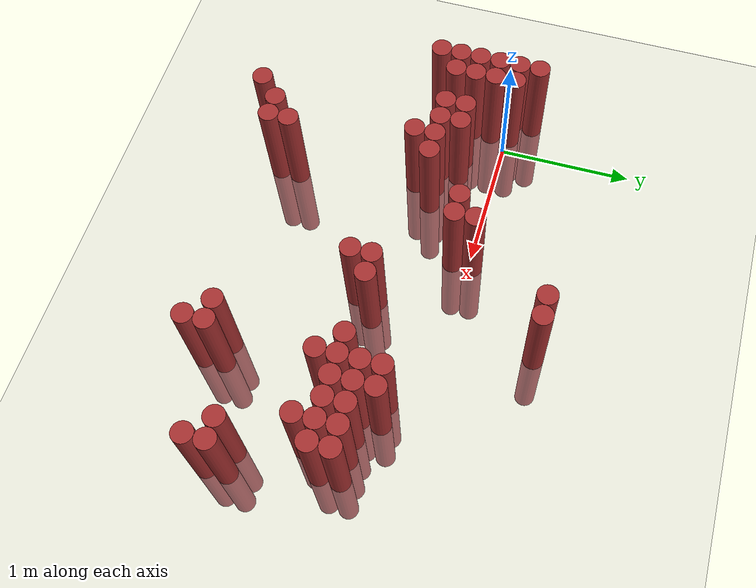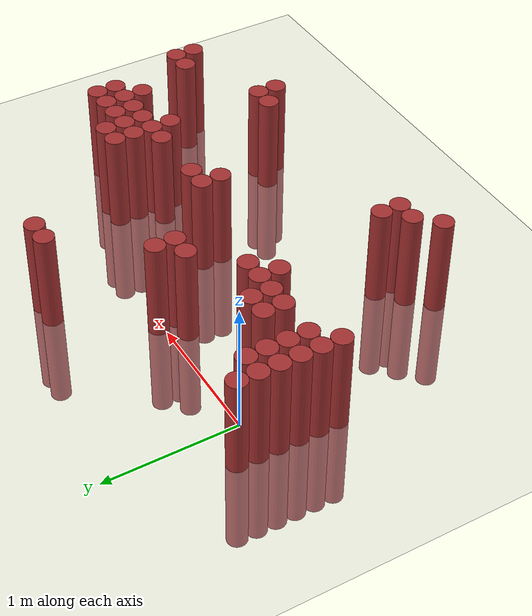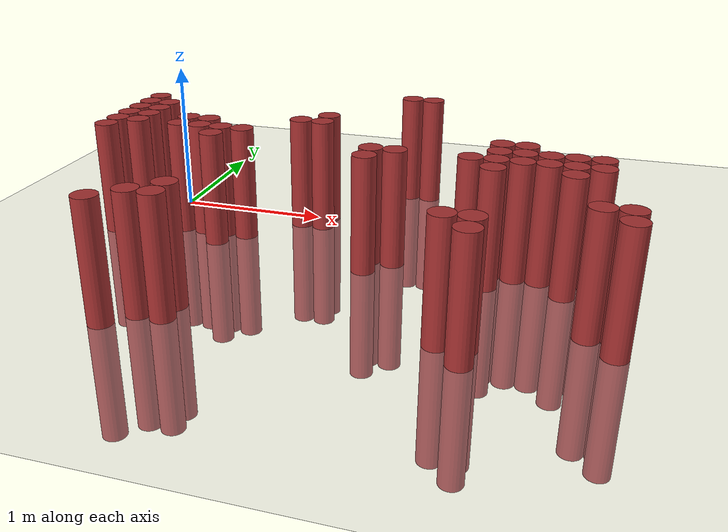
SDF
<sdf version="1.6">
 <world name="default">
  <model name="ground_plane">
   <static>1</static>
   <link name="link">
    <collision name="collision">
     <geometry><plane><normal>0 0 1</normal><size>100 100</size></plane></geometry>
     <surface><friction><ode><mu>100</mu><mu2>50</mu2></ode></friction></surface>
    </collision>
    <visual name="visual">
     <cast_shadows>0</cast_shadows>
     <geometry><plane><normal>0 0 1</normal><size>100 100</size></plane></geometry>
     <material>
      <script><uri>file://media/materials/scripts/gazebo.material</uri><name>Gazebo/Grey</name></script>
     </material>
    </visual>
   </link>
  </model>
  <model name="unit_cylinder_307">
   <static>1</static>
   <pose>-0.275000 -0.575000 0.000000 0.000000 0.000000 0.000000</pose>
   <link name="link">
    <inertial>
     <mass>1</mass>
     <inertia><ixx>0.145833</ixx><ixy>0</ixy><ixz>0</ixz><iyy>0.145833</iyy><iyz>0</iyz><izz>0.125</izz></inertia>
    </inertial>
    <collision name="collision">
     <geometry><cylinder><radius>0.075000</radius><length>1.5</length></cylinder></geometry>
    </collision>
    <visual name="visual">
     <geometry><cylinder><radius>0.075000</radius><length>1.5</length></cylinder></geometry>
     <material>
      <ambient>0.648000 0.192000 0.192000 1</ambient>
      <diffuse>0.648000 0.192000 0.192000 1</diffuse>
     </material>
     <material>
      <script><name>Gazebo/Grey</name><uri>file://media/materials/scripts/gazebo.material</uri></script>
     </material>
    </visual>
   </link>
  </model>
  <model name="unit_cylinder_308">
   <static>1</static>
   <pose>-0.275000 -0.425000 0.000000 0.000000 0.000000 0.000000</pose>
   <link name="link">
    <inertial>
     <mass>1</mass>
     <inertia><ixx>0.145833</ixx><ixy>0</ixy><ixz>0</ixz><iyy>0.145833</iyy><iyz>0</iyz><izz>0.125</izz></inertia>
    </inertial>
    <collision name="collision">
     <geometry><cylinder><radius>0.075000</radius><length>1.5</length></cylinder></geometry>
    </collision>
    <visual name="visual">
     <geometry><cylinder><radius>0.075000</radius><length>1.5</length></cylinder></geometry>
     <material>
      <ambient>0.648000 0.192000 0.192000 1</ambient>
      <diffuse>0.648000 0.192000 0.192000 1</diffuse>
     </material>
     <material>
      <script><name>Gazebo/Grey</name><uri>file://media/materials/scripts/gazebo.material</uri></script>
     </material>
    </visual>
   </link>
  </model>
  <model name="unit_cylinder_309">
   <static>1</static>
   <pose>-0.275000 -0.275000 0.000000 0.000000 0.000000 0.000000</pose>
   <link name="link">
    <inertial>
     <mass>1</mass>
     <inertia><ixx>0.145833</ixx><ixy>0</ixy><ixz>0</ixz><iyy>0.145833</iyy><iyz>0</iyz><izz>0.125</izz></inertia>
    </inertial>
    <collision name="collision">
     <geometry><cylinder><radius>0.075000</radius><length>1.5</length></cylinder></geometry>
    </collision>
    <visual name="visual">
     <geometry><cylinder><radius>0.075000</radius><length>1.5</length></cylinder></geometry>
     <material>
      <ambient>0.648000 0.192000 0.192000 1</ambient>
      <diffuse>0.648000 0.192000 0.192000 1</diffuse>
     </material>
     <material>
      <script><name>Gazebo/Grey</name><uri>file://media/materials/scripts/gazebo.material</uri></script>
     </material>
    </visual>
   </link>
  </model>
  <model name="unit_cylinder_310">
   <static>1</static>
   <pose>-0.275000 -0.125000 0.000000 0.000000 0.000000 0.000000</pose>
   <link name="link">
    <inertial>
     <mass>1</mass>
     <inertia><ixx>0.145833</ixx><ixy>0</ixy><ixz>0</ixz><iyy>0.145833</iyy><iyz>0</iyz><izz>0.125</izz></inertia>
    </inertial>
    <collision name="collision">
     <geometry><cylinder><radius>0.075000</radius><length>1.5</length></cylinder></geometry>
    </collision>
    <visual name="visual">
     <geometry><cylinder><radius>0.075000</radius><length>1.5</length></cylinder></geometry>
     <material>
      <ambient>0.648000 0.192000 0.192000 1</ambient>
      <diffuse>0.648000 0.192000 0.192000 1</diffuse>
     </material>
     <material>
      <script><name>Gazebo/Grey</name><uri>file://media/materials/scripts/gazebo.material</uri></script>
     </material>
    </visual>
   </link>
  </model>
  <model name="unit_cylinder_311">
   <static>1</static>
   <pose>-0.275000 0.025000 0.000000 0.000000 0.000000 0.000000</pose>
   <link name="link">
    <inertial>
     <mass>1</mass>
     <inertia><ixx>0.145833</ixx><ixy>0</ixy><ixz>0</ixz><iyy>0.145833</iyy><iyz>0</iyz><izz>0.125</izz></inertia>
    </inertial>
    <collision name="collision">
     <geometry><cylinder><radius>0.075000</radius><length>1.5</length></cylinder></geometry>
    </collision>
    <visual name="visual">
     <geometry><cylinder><radius>0.075000</radius><length>1.5</length></cylinder></geometry>
     <material>
      <ambient>0.648000 0.192000 0.192000 1</ambient>
      <diffuse>0.648000 0.192000 0.192000 1</diffuse>
     </material>
     <material>
      <script><name>Gazebo/Grey</name><uri>file://media/materials/scripts/gazebo.material</uri></script>
     </material>
    </visual>
   </link>
  </model>
  <model name="unit_cylinder_312">
   <static>1</static>
   <pose>-0.275000 0.175000 0.000000 0.000000 0.000000 0.000000</pose>
   <link name="link">
    <inertial>
     <mass>1</mass>
     <inertia><ixx>0.145833</ixx><ixy>0</ixy><ixz>0</ixz><iyy>0.145833</iyy><iyz>0</iyz><izz>0.125</izz></inertia>
    </inertial>
    <collision name="collision">
     <geometry><cylinder><radius>0.075000</radius><length>1.5</length></cylinder></geometry>
    </collision>
    <visual name="visual">
     <geometry><cylinder><radius>0.075000</radius><length>1.5</length></cylinder></geometry>
     <material>
      <ambient>0.648000 0.192000 0.192000 1</ambient>
      <diffuse>0.648000 0.192000 0.192000 1</diffuse>
     </material>
     <material>
      <script><name>Gazebo/Grey</name><uri>file://media/materials/scripts/gazebo.material</uri></script>
     </material>
    </visual>
   </link>
  </model>
  <model name="unit_cylinder_313">
   <static>1</static>
   <pose>-0.125000 -0.425000 0.000000 0.000000 0.000000 0.000000</pose>
   <link name="link">
    <inertial>
     <mass>1</mass>
     <inertia><ixx>0.145833</ixx><ixy>0</ixy><ixz>0</ixz><iyy>0.145833</iyy><iyz>0</iyz><izz>0.125</izz></inertia>
    </inertial>
    <collision name="collision">
     <geometry><cylinder><radius>0.075000</radius><length>1.5</length></cylinder></geometry>
    </collision>
    <visual name="visual">
     <geometry><cylinder><radius>0.075000</radius><length>1.5</length></cylinder></geometry>
     <material>
      <ambient>0.648000 0.192000 0.192000 1</ambient>
      <diffuse>0.648000 0.192000 0.192000 1</diffuse>
     </material>
     <material>
      <script><name>Gazebo/Grey</name><uri>file://media/materials/scripts/gazebo.material</uri></script>
     </material>
    </visual>
   </link>
  </model>
  <model name="unit_cylinder_314">
   <static>1</static>
   <pose>-0.125000 -0.275000 0.000000 0.000000 0.000000 0.000000</pose>
   <link name="link">
    <inertial>
     <mass>1</mass>
     <inertia><ixx>0.145833</ixx><ixy>0</ixy><ixz>0</ixz><iyy>0.145833</iyy><iyz>0</iyz><izz>0.125</izz></inertia>
    </inertial>
    <collision name="collision">
     <geometry><cylinder><radius>0.075000</radius><length>1.5</length></cylinder></geometry>
    </collision>
    <visual name="visual">
     <geometry><cylinder><radius>0.075000</radius><length>1.5</length></cylinder></geometry>
     <material>
      <ambient>0.648000 0.192000 0.192000 1</ambient>
      <diffuse>0.648000 0.192000 0.192000 1</diffuse>
     </material>
     <material>
      <script><name>Gazebo/Grey</name><uri>file://media/materials/scripts/gazebo.material</uri></script>
     </material>
    </visual>
   </link>
  </model>
  <model name="unit_cylinder_315">
   <static>1</static>
   <pose>-0.125000 -0.125000 0.000000 0.000000 0.000000 0.000000</pose>
   <link name="link">
    <inertial>
     <mass>1</mass>
     <inertia><ixx>0.145833</ixx><ixy>0</ixy><ixz>0</ixz><iyy>0.145833</iyy><iyz>0</iyz><izz>0.125</izz></inertia>
    </inertial>
    <collision name="collision">
     <geometry><cylinder><radius>0.075000</radius><length>1.5</length></cylinder></geometry>
    </collision>
    <visual name="visual">
     <geometry><cylinder><radius>0.075000</radius><length>1.5</length></cylinder></geometry>
     <material>
      <ambient>0.648000 0.192000 0.192000 1</ambient>
      <diffuse>0.648000 0.192000 0.192000 1</diffuse>
     </material>
     <material>
      <script><name>Gazebo/Grey</name><uri>file://media/materials/scripts/gazebo.material</uri></script>
     </material>
    </visual>
   </link>
  </model>
  <model name="unit_cylinder_316">
   <static>1</static>
   <pose>-0.125000 0.025000 0.000000 0.000000 0.000000 0.000000</pose>
   <link name="link">
    <inertial>
     <mass>1</mass>
     <inertia><ixx>0.145833</ixx><ixy>0</ixy><ixz>0</ixz><iyy>0.145833</iyy><iyz>0</iyz><izz>0.125</izz></inertia>
    </inertial>
    <collision name="collision">
     <geometry><cylinder><radius>0.075000</radius><length>1.5</length></cylinder></geometry>
    </collision>
    <visual name="visual">
     <geometry><cylinder><radius>0.075000</radius><length>1.5</length></cylinder></geometry>
     <material>
      <ambient>0.648000 0.192000 0.192000 1</ambient>
      <diffuse>0.648000 0.192000 0.192000 1</diffuse>
     </material>
     <material>
      <script><name>Gazebo/Grey</name><uri>file://media/materials/scripts/gazebo.material</uri></script>
     </material>
    </visual>
   </link>
  </model>
  <model name="unit_cylinder_324">
   <static>1</static>
   <pose>0.175000 -0.425000 0.000000 0.000000 0.000000 0.000000</pose>
   <link name="link">
    <inertial>
     <mass>1</mass>
     <inertia><ixx>0.145833</ixx><ixy>0</ixy><ixz>0</ixz><iyy>0.145833</iyy><iyz>0</iyz><izz>0.125</izz></inertia>
    </inertial>
    <collision name="collision">
     <geometry><cylinder><radius>0.075000</radius><length>1.5</length></cylinder></geometry>
    </collision>
    <visual name="visual">
     <geometry><cylinder><radius>0.075000</radius><length>1.5</length></cylinder></geometry>
     <material>
      <ambient>0.648000 0.192000 0.192000 1</ambient>
      <diffuse>0.648000 0.192000 0.192000 1</diffuse>
     </material>
     <material>
      <script><name>Gazebo/Grey</name><uri>file://media/materials/scripts/gazebo.material</uri></script>
     </material>
    </visual>
   </link>
  </model>
  <model name="unit_cylinder_325">
   <static>1</static>
   <pose>0.175000 -0.275000 0.000000 0.000000 0.000000 0.000000</pose>
   <link name="link">
    <inertial>
     <mass>1</mass>
     <inertia><ixx>0.145833</ixx><ixy>0</ixy><ixz>0</ixz><iyy>0.145833</iyy><iyz>0</iyz><izz>0.125</izz></inertia>
    </inertial>
    <collision name="collision">
     <geometry><cylinder><radius>0.075000</radius><length>1.5</length></cylinder></geometry>
    </collision>
    <visual name="visual">
     <geometry><cylinder><radius>0.075000</radius><length>1.5</length></cylinder></geometry>
     <material>
      <ambient>0.648000 0.192000 0.192000 1</ambient>
      <diffuse>0.648000 0.192000 0.192000 1</diffuse>
     </material>
     <material>
      <script><name>Gazebo/Grey</name><uri>file://media/materials/scripts/gazebo.material</uri></script>
     </material>
    </visual>
   </link>
  </model>
  <model name="unit_cylinder_331">
   <static>1</static>
   <pose>0.325000 -1.775000 0.000000 0.000000 0.000000 0.000000</pose>
   <link name="link">
    <inertial>
     <mass>1</mass>
     <inertia><ixx>0.145833</ixx><ixy>0</ixy><ixz>0</ixz><iyy>0.145833</iyy><iyz>0</iyz><izz>0.125</izz></inertia>
    </inertial>
    <collision name="collision">
     <geometry><cylinder><radius>0.075000</radius><length>1.5</length></cylinder></geometry>
    </collision>
    <visual name="visual">
     <geometry><cylinder><radius>0.075000</radius><length>1.5</length></cylinder></geometry>
     <material>
      <ambient>0.648000 0.192000 0.192000 1</ambient>
      <diffuse>0.648000 0.192000 0.192000 1</diffuse>
     </material>
     <material>
      <script><name>Gazebo/Grey</name><uri>file://media/materials/scripts/gazebo.material</uri></script>
     </material>
    </visual>
   </link>
  </model>
  <model name="unit_cylinder_332">
   <static>1</static>
   <pose>0.325000 -0.425000 0.000000 0.000000 0.000000 0.000000</pose>
   <link name="link">
    <inertial>
     <mass>1</mass>
     <inertia><ixx>0.145833</ixx><ixy>0</ixy><ixz>0</ixz><iyy>0.145833</iyy><iyz>0</iyz><izz>0.125</izz></inertia>
    </inertial>
    <collision name="collision">
     <geometry><cylinder><radius>0.075000</radius><length>1.5</length></cylinder></geometry>
    </collision>
    <visual name="visual">
     <geometry><cylinder><radius>0.075000</radius><length>1.5</length></cylinder></geometry>
     <material>
      <ambient>0.648000 0.192000 0.192000 1</ambient>
      <diffuse>0.648000 0.192000 0.192000 1</diffuse>
     </material>
     <material>
      <script><name>Gazebo/Grey</name><uri>file://media/materials/scripts/gazebo.material</uri></script>
     </material>
    </visual>
   </link>
  </model>
  <model name="unit_cylinder_333">
   <static>1</static>
   <pose>0.325000 -0.275000 0.000000 0.000000 0.000000 0.000000</pose>
   <link name="link">
    <inertial>
     <mass>1</mass>
     <inertia><ixx>0.145833</ixx><ixy>0</ixy><ixz>0</ixz><iyy>0.145833</iyy><iyz>0</iyz><izz>0.125</izz></inertia>
    </inertial>
    <collision name="collision">
     <geometry><cylinder><radius>0.075000</radius><length>1.5</length></cylinder></geometry>
    </collision>
    <visual name="visual">
     <geometry><cylinder><radius>0.075000</radius><length>1.5</length></cylinder></geometry>
     <material>
      <ambient>0.648000 0.192000 0.192000 1</ambient>
      <diffuse>0.648000 0.192000 0.192000 1</diffuse>
     </material>
     <material>
      <script><name>Gazebo/Grey</name><uri>file://media/materials/scripts/gazebo.material</uri></script>
     </material>
    </visual>
   </link>
  </model>
  <model name="unit_cylinder_336">
   <static>1</static>
   <pose>0.475000 -1.625000 0.000000 0.000000 0.000000 0.000000</pose>
   <link name="link">
    <inertial>
     <mass>1</mass>
     <inertia><ixx>0.145833</ixx><ixy>0</ixy><ixz>0</ixz><iyy>0.145833</iyy><iyz>0</iyz><izz>0.125</izz></inertia>
    </inertial>
    <collision name="collision">
     <geometry><cylinder><radius>0.075000</radius><length>1.5</length></cylinder></geometry>
    </collision>
    <visual name="visual">
     <geometry><cylinder><radius>0.075000</radius><length>1.5</length></cylinder></geometry>
     <material>
      <ambient>0.648000 0.192000 0.192000 1</ambient>
      <diffuse>0.648000 0.192000 0.192000 1</diffuse>
     </material>
     <material>
      <script><name>Gazebo/Grey</name><uri>file://media/materials/scripts/gazebo.material</uri></script>
     </material>
    </visual>
   </link>
  </model>
  <model name="unit_cylinder_337">
   <static>1</static>
   <pose>0.475000 -0.575000 0.000000 0.000000 0.000000 0.000000</pose>
   <link name="link">
    <inertial>
     <mass>1</mass>
     <inertia><ixx>0.145833</ixx><ixy>0</ixy><ixz>0</ixz><iyy>0.145833</iyy><iyz>0</iyz><izz>0.125</izz></inertia>
    </inertial>
    <collision name="collision">
     <geometry><cylinder><radius>0.075000</radius><length>1.5</length></cylinder></geometry>
    </collision>
    <visual name="visual">
     <geometry><cylinder><radius>0.075000</radius><length>1.5</length></cylinder></geometry>
     <material>
      <ambient>0.648000 0.192000 0.192000 1</ambient>
      <diffuse>0.648000 0.192000 0.192000 1</diffuse>
     </material>
     <material>
      <script><name>Gazebo/Grey</name><uri>file://media/materials/scripts/gazebo.material</uri></script>
     </material>
    </visual>
   </link>
  </model>
  <model name="unit_cylinder_338">
   <static>1</static>
   <pose>0.475000 -0.425000 0.000000 0.000000 0.000000 0.000000</pose>
   <link name="link">
    <inertial>
     <mass>1</mass>
     <inertia><ixx>0.145833</ixx><ixy>0</ixy><ixz>0</ixz><iyy>0.145833</iyy><iyz>0</iyz><izz>0.125</izz></inertia>
    </inertial>
    <collision name="collision">
     <geometry><cylinder><radius>0.075000</radius><length>1.5</length></cylinder></geometry>
    </collision>
    <visual name="visual">
     <geometry><cylinder><radius>0.075000</radius><length>1.5</length></cylinder></geometry>
     <material>
      <ambient>0.648000 0.192000 0.192000 1</ambient>
      <diffuse>0.648000 0.192000 0.192000 1</diffuse>
     </material>
     <material>
      <script><name>Gazebo/Grey</name><uri>file://media/materials/scripts/gazebo.material</uri></script>
     </material>
    </visual>
   </link>
  </model>
  <model name="unit_cylinder_339">
   <static>1</static>
   <pose>0.625000 -1.625000 0.000000 0.000000 0.000000 0.000000</pose>
   <link name="link">
    <inertial>
     <mass>1</mass>
     <inertia><ixx>0.145833</ixx><ixy>0</ixy><ixz>0</ixz><iyy>0.145833</iyy><iyz>0</iyz><izz>0.125</izz></inertia>
    </inertial>
    <collision name="collision">
     <geometry><cylinder><radius>0.075000</radius><length>1.5</length></cylinder></geometry>
    </collision>
    <visual name="visual">
     <geometry><cylinder><radius>0.075000</radius><length>1.5</length></cylinder></geometry>
     <material>
      <ambient>0.648000 0.192000 0.192000 1</ambient>
      <diffuse>0.648000 0.192000 0.192000 1</diffuse>
     </material>
     <material>
      <script><name>Gazebo/Grey</name><uri>file://media/materials/scripts/gazebo.material</uri></script>
     </material>
    </visual>
   </link>
  </model>
  <model name="unit_cylinder_340">
   <static>1</static>
   <pose>0.625000 -1.475000 0.000000 0.000000 0.000000 0.000000</pose>
   <link name="link">
    <inertial>
     <mass>1</mass>
     <inertia><ixx>0.145833</ixx><ixy>0</ixy><ixz>0</ixz><iyy>0.145833</iyy><iyz>0</iyz><izz>0.125</izz></inertia>
    </inertial>
    <collision name="collision">
     <geometry><cylinder><radius>0.075000</radius><length>1.5</length></cylinder></geometry>
    </collision>
    <visual name="visual">
     <geometry><cylinder><radius>0.075000</radius><length>1.5</length></cylinder></geometry>
     <material>
      <ambient>0.648000 0.192000 0.192000 1</ambient>
      <diffuse>0.648000 0.192000 0.192000 1</diffuse>
     </material>
     <material>
      <script><name>Gazebo/Grey</name><uri>file://media/materials/scripts/gazebo.material</uri></script>
     </material>
    </visual>
   </link>
  </model>
  <model name="unit_cylinder_341">
   <static>1</static>
   <pose>0.625000 -0.425000 0.000000 0.000000 0.000000 0.000000</pose>
   <link name="link">
    <inertial>
     <mass>1</mass>
     <inertia><ixx>0.145833</ixx><ixy>0</ixy><ixz>0</ixz><iyy>0.145833</iyy><iyz>0</iyz><izz>0.125</izz></inertia>
    </inertial>
    <collision name="collision">
     <geometry><cylinder><radius>0.075000</radius><length>1.5</length></cylinder></geometry>
    </collision>
    <visual name="visual">
     <geometry><cylinder><radius>0.075000</radius><length>1.5</length></cylinder></geometry>
     <material>
      <ambient>0.648000 0.192000 0.192000 1</ambient>
      <diffuse>0.648000 0.192000 0.192000 1</diffuse>
     </material>
     <material>
      <script><name>Gazebo/Grey</name><uri>file://media/materials/scripts/gazebo.material</uri></script>
     </material>
    </visual>
   </link>
  </model>
  <model name="unit_cylinder_348">
   <static>1</static>
   <pose>0.925000 -0.125000 0.000000 0.000000 0.000000 0.000000</pose>
   <link name="link">
    <inertial>
     <mass>1</mass>
     <inertia><ixx>0.145833</ixx><ixy>0</ixy><ixz>0</ixz><iyy>0.145833</iyy><iyz>0</iyz><izz>0.125</izz></inertia>
    </inertial>
    <collision name="collision">
     <geometry><cylinder><radius>0.075000</radius><length>1.5</length></cylinder></geometry>
    </collision>
    <visual name="visual">
     <geometry><cylinder><radius>0.075000</radius><length>1.5</length></cylinder></geometry>
     <material>
      <ambient>0.648000 0.192000 0.192000 1</ambient>
      <diffuse>0.648000 0.192000 0.192000 1</diffuse>
     </material>
     <material>
      <script><name>Gazebo/Grey</name><uri>file://media/materials/scripts/gazebo.material</uri></script>
     </material>
    </visual>
   </link>
  </model>
  <model name="unit_cylinder_349">
   <static>1</static>
   <pose>1.075000 -0.125000 0.000000 0.000000 0.000000 0.000000</pose>
   <link name="link">
    <inertial>
     <mass>1</mass>
     <inertia><ixx>0.145833</ixx><ixy>0</ixy><ixz>0</ixz><iyy>0.145833</iyy><iyz>0</iyz><izz>0.125</izz></inertia>
    </inertial>
    <collision name="collision">
     <geometry><cylinder><radius>0.075000</radius><length>1.5</length></cylinder></geometry>
    </collision>
    <visual name="visual">
     <geometry><cylinder><radius>0.075000</radius><length>1.5</length></cylinder></geometry>
     <material>
      <ambient>0.648000 0.192000 0.192000 1</ambient>
      <diffuse>0.648000 0.192000 0.192000 1</diffuse>
     </material>
     <material>
      <script><name>Gazebo/Grey</name><uri>file://media/materials/scripts/gazebo.material</uri></script>
     </material>
    </visual>
   </link>
  </model>
  <model name="unit_cylinder_350">
   <static>1</static>
   <pose>1.075000 0.025000 0.000000 0.000000 0.000000 0.000000</pose>
   <link name="link">
    <inertial>
     <mass>1</mass>
     <inertia><ixx>0.145833</ixx><ixy>0</ixy><ixz>0</ixz><iyy>0.145833</iyy><iyz>0</iyz><izz>0.125</izz></inertia>
    </inertial>
    <collision name="collision">
     <geometry><cylinder><radius>0.075000</radius><length>1.5</length></cylinder></geometry>
    </collision>
    <visual name="visual">
     <geometry><cylinder><radius>0.075000</radius><length>1.5</length></cylinder></geometry>
     <material>
      <ambient>0.648000 0.192000 0.192000 1</ambient>
      <diffuse>0.648000 0.192000 0.192000 1</diffuse>
     </material>
     <material>
      <script><name>Gazebo/Grey</name><uri>file://media/materials/scripts/gazebo.material</uri></script>
     </material>
    </visual>
   </link>
  </model>
  <model name="unit_cylinder_354">
   <static>1</static>
   <pose>1.525000 -0.725000 0.000000 0.000000 0.000000 0.000000</pose>
   <link name="link">
    <inertial>
     <mass>1</mass>
     <inertia><ixx>0.145833</ixx><ixy>0</ixy><ixz>0</ixz><iyy>0.145833</iyy><iyz>0</iyz><izz>0.125</izz></inertia>
    </inertial>
    <collision name="collision">
     <geometry><cylinder><radius>0.075000</radius><length>1.5</length></cylinder></geometry>
    </collision>
    <visual name="visual">
     <geometry><cylinder><radius>0.075000</radius><length>1.5</length></cylinder></geometry>
     <material>
      <ambient>0.648000 0.192000 0.192000 1</ambient>
      <diffuse>0.648000 0.192000 0.192000 1</diffuse>
     </material>
     <material>
      <script><name>Gazebo/Grey</name><uri>file://media/materials/scripts/gazebo.material</uri></script>
     </material>
    </visual>
   </link>
  </model>
  <model name="unit_cylinder_355">
   <static>1</static>
   <pose>1.525000 -0.575000 0.000000 0.000000 0.000000 0.000000</pose>
   <link name="link">
    <inertial>
     <mass>1</mass>
     <inertia><ixx>0.145833</ixx><ixy>0</ixy><ixz>0</ixz><iyy>0.145833</iyy><iyz>0</iyz><izz>0.125</izz></inertia>
    </inertial>
    <collision name="collision">
     <geometry><cylinder><radius>0.075000</radius><length>1.5</length></cylinder></geometry>
    </collision>
    <visual name="visual">
     <geometry><cylinder><radius>0.075000</radius><length>1.5</length></cylinder></geometry>
     <material>
      <ambient>0.648000 0.192000 0.192000 1</ambient>
      <diffuse>0.648000 0.192000 0.192000 1</diffuse>
     </material>
     <material>
      <script><name>Gazebo/Grey</name><uri>file://media/materials/scripts/gazebo.material</uri></script>
     </material>
    </visual>
   </link>
  </model>
  <model name="unit_cylinder_356">
   <static>1</static>
   <pose>1.525000 0.625000 0.000000 0.000000 0.000000 0.000000</pose>
   <link name="link">
    <inertial>
     <mass>1</mass>
     <inertia><ixx>0.145833</ixx><ixy>0</ixy><ixz>0</ixz><iyy>0.145833</iyy><iyz>0</iyz><izz>0.125</izz></inertia>
    </inertial>
    <collision name="collision">
     <geometry><cylinder><radius>0.075000</radius><length>1.5</length></cylinder></geometry>
    </collision>
    <visual name="visual">
     <geometry><cylinder><radius>0.075000</radius><length>1.5</length></cylinder></geometry>
     <material>
      <ambient>0.648000 0.192000 0.192000 1</ambient>
      <diffuse>0.648000 0.192000 0.192000 1</diffuse>
     </material>
     <material>
      <script><name>Gazebo/Grey</name><uri>file://media/materials/scripts/gazebo.material</uri></script>
     </material>
    </visual>
   </link>
  </model>
  <model name="unit_cylinder_357">
   <static>1</static>
   <pose>1.675000 -0.575000 0.000000 0.000000 0.000000 0.000000</pose>
   <link name="link">
    <inertial>
     <mass>1</mass>
     <inertia><ixx>0.145833</ixx><ixy>0</ixy><ixz>0</ixz><iyy>0.145833</iyy><iyz>0</iyz><izz>0.125</izz></inertia>
    </inertial>
    <collision name="collision">
     <geometry><cylinder><radius>0.075000</radius><length>1.5</length></cylinder></geometry>
    </collision>
    <visual name="visual">
     <geometry><cylinder><radius>0.075000</radius><length>1.5</length></cylinder></geometry>
     <material>
      <ambient>0.648000 0.192000 0.192000 1</ambient>
      <diffuse>0.648000 0.192000 0.192000 1</diffuse>
     </material>
     <material>
      <script><name>Gazebo/Grey</name><uri>file://media/materials/scripts/gazebo.material</uri></script>
     </material>
    </visual>
   </link>
  </model>
  <model name="unit_cylinder_358">
   <static>1</static>
   <pose>1.675000 0.625000 0.000000 0.000000 0.000000 0.000000</pose>
   <link name="link">
    <inertial>
     <mass>1</mass>
     <inertia><ixx>0.145833</ixx><ixy>0</ixy><ixz>0</ixz><iyy>0.145833</iyy><iyz>0</iyz><izz>0.125</izz></inertia>
    </inertial>
    <collision name="collision">
     <geometry><cylinder><radius>0.075000</radius><length>1.5</length></cylinder></geometry>
    </collision>
    <visual name="visual">
     <geometry><cylinder><radius>0.075000</radius><length>1.5</length></cylinder></geometry>
     <material>
      <ambient>0.648000 0.192000 0.192000 1</ambient>
      <diffuse>0.648000 0.192000 0.192000 1</diffuse>
     </material>
     <material>
      <script><name>Gazebo/Grey</name><uri>file://media/materials/scripts/gazebo.material</uri></script>
     </material>
    </visual>
   </link>
  </model>
  <model name="unit_cylinder_364">
   <static>1</static>
   <pose>2.125000 -1.475000 0.000000 0.000000 0.000000 0.000000</pose>
   <link name="link">
    <inertial>
     <mass>1</mass>
     <inertia><ixx>0.145833</ixx><ixy>0</ixy><ixz>0</ixz><iyy>0.145833</iyy><iyz>0</iyz><izz>0.125</izz></inertia>
    </inertial>
    <collision name="collision">
     <geometry><cylinder><radius>0.075000</radius><length>1.5</length></cylinder></geometry>
    </collision>
    <visual name="visual">
     <geometry><cylinder><radius>0.075000</radius><length>1.5</length></cylinder></geometry>
     <material>
      <ambient>0.648000 0.192000 0.192000 1</ambient>
      <diffuse>0.648000 0.192000 0.192000 1</diffuse>
     </material>
     <material>
      <script><name>Gazebo/Grey</name><uri>file://media/materials/scripts/gazebo.material</uri></script>
     </material>
    </visual>
   </link>
  </model>
  <model name="unit_cylinder_365">
   <static>1</static>
   <pose>2.125000 -0.575000 0.000000 0.000000 0.000000 0.000000</pose>
   <link name="link">
    <inertial>
     <mass>1</mass>
     <inertia><ixx>0.145833</ixx><ixy>0</ixy><ixz>0</ixz><iyy>0.145833</iyy><iyz>0</iyz><izz>0.125</izz></inertia>
    </inertial>
    <collision name="collision">
     <geometry><cylinder><radius>0.075000</radius><length>1.5</length></cylinder></geometry>
    </collision>
    <visual name="visual">
     <geometry><cylinder><radius>0.075000</radius><length>1.5</length></cylinder></geometry>
     <material>
      <ambient>0.648000 0.192000 0.192000 1</ambient>
      <diffuse>0.648000 0.192000 0.192000 1</diffuse>
     </material>
     <material>
      <script><name>Gazebo/Grey</name><uri>file://media/materials/scripts/gazebo.material</uri></script>
     </material>
    </visual>
   </link>
  </model>
  <model name="unit_cylinder_366">
   <static>1</static>
   <pose>2.275000 -1.625000 0.000000 0.000000 0.000000 0.000000</pose>
   <link name="link">
    <inertial>
     <mass>1</mass>
     <inertia><ixx>0.145833</ixx><ixy>0</ixy><ixz>0</ixz><iyy>0.145833</iyy><iyz>0</iyz><izz>0.125</izz></inertia>
    </inertial>
    <collision name="collision">
     <geometry><cylinder><radius>0.075000</radius><length>1.5</length></cylinder></geometry>
    </collision>
    <visual name="visual">
     <geometry><cylinder><radius>0.075000</radius><length>1.5</length></cylinder></geometry>
     <material>
      <ambient>0.648000 0.192000 0.192000 1</ambient>
      <diffuse>0.648000 0.192000 0.192000 1</diffuse>
     </material>
     <material>
      <script><name>Gazebo/Grey</name><uri>file://media/materials/scripts/gazebo.material</uri></script>
     </material>
    </visual>
   </link>
  </model>
  <model name="unit_cylinder_367">
   <static>1</static>
   <pose>2.275000 -1.475000 0.000000 0.000000 0.000000 0.000000</pose>
   <link name="link">
    <inertial>
     <mass>1</mass>
     <inertia><ixx>0.145833</ixx><ixy>0</ixy><ixz>0</ixz><iyy>0.145833</iyy><iyz>0</iyz><izz>0.125</izz></inertia>
    </inertial>
    <collision name="collision">
     <geometry><cylinder><radius>0.075000</radius><length>1.5</length></cylinder></geometry>
    </collision>
    <visual name="visual">
     <geometry><cylinder><radius>0.075000</radius><length>1.5</length></cylinder></geometry>
     <material>
      <ambient>0.648000 0.192000 0.192000 1</ambient>
      <diffuse>0.648000 0.192000 0.192000 1</diffuse>
     </material>
     <material>
      <script><name>Gazebo/Grey</name><uri>file://media/materials/scripts/gazebo.material</uri></script>
     </material>
    </visual>
   </link>
  </model>
  <model name="unit_cylinder_368">
   <static>1</static>
   <pose>2.275000 -0.725000 0.000000 0.000000 0.000000 0.000000</pose>
   <link name="link">
    <inertial>
     <mass>1</mass>
     <inertia><ixx>0.145833</ixx><ixy>0</ixy><ixz>0</ixz><iyy>0.145833</iyy><iyz>0</iyz><izz>0.125</izz></inertia>
    </inertial>
    <collision name="collision">
     <geometry><cylinder><radius>0.075000</radius><length>1.5</length></cylinder></geometry>
    </collision>
    <visual name="visual">
     <geometry><cylinder><radius>0.075000</radius><length>1.5</length></cylinder></geometry>
     <material>
      <ambient>0.648000 0.192000 0.192000 1</ambient>
      <diffuse>0.648000 0.192000 0.192000 1</diffuse>
     </material>
     <material>
      <script><name>Gazebo/Grey</name><uri>file://media/materials/scripts/gazebo.material</uri></script>
     </material>
    </visual>
   </link>
  </model>
  <model name="unit_cylinder_369">
   <static>1</static>
   <pose>2.275000 -0.575000 0.000000 0.000000 0.000000 0.000000</pose>
   <link name="link">
    <inertial>
     <mass>1</mass>
     <inertia><ixx>0.145833</ixx><ixy>0</ixy><ixz>0</ixz><iyy>0.145833</iyy><iyz>0</iyz><izz>0.125</izz></inertia>
    </inertial>
    <collision name="collision">
     <geometry><cylinder><radius>0.075000</radius><length>1.5</length></cylinder></geometry>
    </collision>
    <visual name="visual">
     <geometry><cylinder><radius>0.075000</radius><length>1.5</length></cylinder></geometry>
     <material>
      <ambient>0.648000 0.192000 0.192000 1</ambient>
      <diffuse>0.648000 0.192000 0.192000 1</diffuse>
     </material>
     <material>
      <script><name>Gazebo/Grey</name><uri>file://media/materials/scripts/gazebo.material</uri></script>
     </material>
    </visual>
   </link>
  </model>
  <model name="unit_cylinder_370">
   <static>1</static>
   <pose>2.275000 -0.425000 0.000000 0.000000 0.000000 0.000000</pose>
   <link name="link">
    <inertial>
     <mass>1</mass>
     <inertia><ixx>0.145833</ixx><ixy>0</ixy><ixz>0</ixz><iyy>0.145833</iyy><iyz>0</iyz><izz>0.125</izz></inertia>
    </inertial>
    <collision name="collision">
     <geometry><cylinder><radius>0.075000</radius><length>1.5</length></cylinder></geometry>
    </collision>
    <visual name="visual">
     <geometry><cylinder><radius>0.075000</radius><length>1.5</length></cylinder></geometry>
     <material>
      <ambient>0.648000 0.192000 0.192000 1</ambient>
      <diffuse>0.648000 0.192000 0.192000 1</diffuse>
     </material>
     <material>
      <script><name>Gazebo/Grey</name><uri>file://media/materials/scripts/gazebo.material</uri></script>
     </material>
    </visual>
   </link>
  </model>
  <model name="unit_cylinder_371">
   <static>1</static>
   <pose>2.275000 -0.275000 0.000000 0.000000 0.000000 0.000000</pose>
   <link name="link">
    <inertial>
     <mass>1</mass>
     <inertia><ixx>0.145833</ixx><ixy>0</ixy><ixz>0</ixz><iyy>0.145833</iyy><iyz>0</iyz><izz>0.125</izz></inertia>
    </inertial>
    <collision name="collision">
     <geometry><cylinder><radius>0.075000</radius><length>1.5</length></cylinder></geometry>
    </collision>
    <visual name="visual">
     <geometry><cylinder><radius>0.075000</radius><length>1.5</length></cylinder></geometry>
     <material>
      <ambient>0.648000 0.192000 0.192000 1</ambient>
      <diffuse>0.648000 0.192000 0.192000 1</diffuse>
     </material>
     <material>
      <script><name>Gazebo/Grey</name><uri>file://media/materials/scripts/gazebo.material</uri></script>
     </material>
    </visual>
   </link>
  </model>
  <model name="unit_cylinder_374">
   <static>1</static>
   <pose>2.425000 -0.575000 0.000000 0.000000 0.000000 0.000000</pose>
   <link name="link">
    <inertial>
     <mass>1</mass>
     <inertia><ixx>0.145833</ixx><ixy>0</ixy><ixz>0</ixz><iyy>0.145833</iyy><iyz>0</iyz><izz>0.125</izz></inertia>
    </inertial>
    <collision name="collision">
     <geometry><cylinder><radius>0.075000</radius><length>1.5</length></cylinder></geometry>
    </collision>
    <visual name="visual">
     <geometry><cylinder><radius>0.075000</radius><length>1.5</length></cylinder></geometry>
     <material>
      <ambient>0.648000 0.192000 0.192000 1</ambient>
      <diffuse>0.648000 0.192000 0.192000 1</diffuse>
     </material>
     <material>
      <script><name>Gazebo/Grey</name><uri>file://media/materials/scripts/gazebo.material</uri></script>
     </material>
    </visual>
   </link>
  </model>
  <model name="unit_cylinder_375">
   <static>1</static>
   <pose>2.425000 -0.425000 0.000000 0.000000 0.000000 0.000000</pose>
   <link name="link">
    <inertial>
     <mass>1</mass>
     <inertia><ixx>0.145833</ixx><ixy>0</ixy><ixz>0</ixz><iyy>0.145833</iyy><iyz>0</iyz><izz>0.125</izz></inertia>
    </inertial>
    <collision name="collision">
     <geometry><cylinder><radius>0.075000</radius><length>1.5</length></cylinder></geometry>
    </collision>
    <visual name="visual">
     <geometry><cylinder><radius>0.075000</radius><length>1.5</length></cylinder></geometry>
     <material>
      <ambient>0.648000 0.192000 0.192000 1</ambient>
      <diffuse>0.648000 0.192000 0.192000 1</diffuse>
     </material>
     <material>
      <script><name>Gazebo/Grey</name><uri>file://media/materials/scripts/gazebo.material</uri></script>
     </material>
    </visual>
   </link>
  </model>
  <model name="unit_cylinder_376">
   <static>1</static>
   <pose>2.425000 -0.275000 0.000000 0.000000 0.000000 0.000000</pose>
   <link name="link">
    <inertial>
     <mass>1</mass>
     <inertia><ixx>0.145833</ixx><ixy>0</ixy><ixz>0</ixz><iyy>0.145833</iyy><iyz>0</iyz><izz>0.125</izz></inertia>
    </inertial>
    <collision name="collision">
     <geometry><cylinder><radius>0.075000</radius><length>1.5</length></cylinder></geometry>
    </collision>
    <visual name="visual">
     <geometry><cylinder><radius>0.075000</radius><length>1.5</length></cylinder></geometry>
     <material>
      <ambient>0.648000 0.192000 0.192000 1</ambient>
      <diffuse>0.648000 0.192000 0.192000 1</diffuse>
     </material>
     <material>
      <script><name>Gazebo/Grey</name><uri>file://media/materials/scripts/gazebo.material</uri></script>
     </material>
    </visual>
   </link>
  </model>
  <model name="unit_cylinder_381">
   <static>1</static>
   <pose>2.575000 -0.575000 0.000000 0.000000 0.000000 0.000000</pose>
   <link name="link">
    <inertial>
     <mass>1</mass>
     <inertia><ixx>0.145833</ixx><ixy>0</ixy><ixz>0</ixz><iyy>0.145833</iyy><iyz>0</iyz><izz>0.125</izz></inertia>
    </inertial>
    <collision name="collision">
     <geometry><cylinder><radius>0.075000</radius><length>1.5</length></cylinder></geometry>
    </collision>
    <visual name="visual">
     <geometry><cylinder><radius>0.075000</radius><length>1.5</length></cylinder></geometry>
     <material>
      <ambient>0.648000 0.192000 0.192000 1</ambient>
      <diffuse>0.648000 0.192000 0.192000 1</diffuse>
     </material>
     <material>
      <script><name>Gazebo/Grey</name><uri>file://media/materials/scripts/gazebo.material</uri></script>
     </material>
    </visual>
   </link>
  </model>
  <model name="unit_cylinder_382">
   <static>1</static>
   <pose>2.575000 -0.425000 0.000000 0.000000 0.000000 0.000000</pose>
   <link name="link">
    <inertial>
     <mass>1</mass>
     <inertia><ixx>0.145833</ixx><ixy>0</ixy><ixz>0</ixz><iyy>0.145833</iyy><iyz>0</iyz><izz>0.125</izz></inertia>
    </inertial>
    <collision name="collision">
     <geometry><cylinder><radius>0.075000</radius><length>1.5</length></cylinder></geometry>
    </collision>
    <visual name="visual">
     <geometry><cylinder><radius>0.075000</radius><length>1.5</length></cylinder></geometry>
     <material>
      <ambient>0.648000 0.192000 0.192000 1</ambient>
      <diffuse>0.648000 0.192000 0.192000 1</diffuse>
     </material>
     <material>
      <script><name>Gazebo/Grey</name><uri>file://media/materials/scripts/gazebo.material</uri></script>
     </material>
    </visual>
   </link>
  </model>
  <model name="unit_cylinder_387">
   <static>1</static>
   <pose>2.725000 -0.725000 0.000000 0.000000 0.000000 0.000000</pose>
   <link name="link">
    <inertial>
     <mass>1</mass>
     <inertia><ixx>0.145833</ixx><ixy>0</ixy><ixz>0</ixz><iyy>0.145833</iyy><iyz>0</iyz><izz>0.125</izz></inertia>
    </inertial>
    <collision name="collision">
     <geometry><cylinder><radius>0.075000</radius><length>1.5</length></cylinder></geometry>
    </collision>
    <visual name="visual">
     <geometry><cylinder><radius>0.075000</radius><length>1.5</length></cylinder></geometry>
     <material>
      <ambient>0.648000 0.192000 0.192000 1</ambient>
      <diffuse>0.648000 0.192000 0.192000 1</diffuse>
     </material>
     <material>
      <script><name>Gazebo/Grey</name><uri>file://media/materials/scripts/gazebo.material</uri></script>
     </material>
    </visual>
   </link>
  </model>
  <model name="unit_cylinder_388">
   <static>1</static>
   <pose>2.725000 -0.575000 0.000000 0.000000 0.000000 0.000000</pose>
   <link name="link">
    <inertial>
     <mass>1</mass>
     <inertia><ixx>0.145833</ixx><ixy>0</ixy><ixz>0</ixz><iyy>0.145833</iyy><iyz>0</iyz><izz>0.125</izz></inertia>
    </inertial>
    <collision name="collision">
     <geometry><cylinder><radius>0.075000</radius><length>1.5</length></cylinder></geometry>
    </collision>
    <visual name="visual">
     <geometry><cylinder><radius>0.075000</radius><length>1.5</length></cylinder></geometry>
     <material>
      <ambient>0.648000 0.192000 0.192000 1</ambient>
      <diffuse>0.648000 0.192000 0.192000 1</diffuse>
     </material>
     <material>
      <script><name>Gazebo/Grey</name><uri>file://media/materials/scripts/gazebo.material</uri></script>
     </material>
    </visual>
   </link>
  </model>
  <model name="unit_cylinder_389">
   <static>1</static>
   <pose>2.725000 -0.425000 0.000000 0.000000 0.000000 0.000000</pose>
   <link name="link">
    <inertial>
     <mass>1</mass>
     <inertia><ixx>0.145833</ixx><ixy>0</ixy><ixz>0</ixz><iyy>0.145833</iyy><iyz>0</iyz><izz>0.125</izz></inertia>
    </inertial>
    <collision name="collision">
     <geometry><cylinder><radius>0.075000</radius><length>1.5</length></cylinder></geometry>
    </collision>
    <visual name="visual">
     <geometry><cylinder><radius>0.075000</radius><length>1.5</length></cylinder></geometry>
     <material>
      <ambient>0.648000 0.192000 0.192000 1</ambient>
      <diffuse>0.648000 0.192000 0.192000 1</diffuse>
     </material>
     <material>
      <script><name>Gazebo/Grey</name><uri>file://media/materials/scripts/gazebo.material</uri></script>
     </material>
    </visual>
   </link>
  </model>
  <model name="unit_cylinder_392">
   <static>1</static>
   <pose>2.875000 -1.175000 0.000000 0.000000 0.000000 0.000000</pose>
   <link name="link">
    <inertial>
     <mass>1</mass>
     <inertia><ixx>0.145833</ixx><ixy>0</ixy><ixz>0</ixz><iyy>0.145833</iyy><iyz>0</iyz><izz>0.125</izz></inertia>
    </inertial>
    <collision name="collision">
     <geometry><cylinder><radius>0.075000</radius><length>1.5</length></cylinder></geometry>
    </collision>
    <visual name="visual">
     <geometry><cylinder><radius>0.075000</radius><length>1.5</length></cylinder></geometry>
     <material>
      <ambient>0.648000 0.192000 0.192000 1</ambient>
      <diffuse>0.648000 0.192000 0.192000 1</diffuse>
     </material>
     <material>
      <script><name>Gazebo/Grey</name><uri>file://media/materials/scripts/gazebo.material</uri></script>
     </material>
    </visual>
   </link>
  </model>
  <model name="unit_cylinder_393">
   <static>1</static>
   <pose>2.875000 -0.575000 0.000000 0.000000 0.000000 0.000000</pose>
   <link name="link">
    <inertial>
     <mass>1</mass>
     <inertia><ixx>0.145833</ixx><ixy>0</ixy><ixz>0</ixz><iyy>0.145833</iyy><iyz>0</iyz><izz>0.125</izz></inertia>
    </inertial>
    <collision name="collision">
     <geometry><cylinder><radius>0.075000</radius><length>1.5</length></cylinder></geometry>
    </collision>
    <visual name="visual">
     <geometry><cylinder><radius>0.075000</radius><length>1.5</length></cylinder></geometry>
     <material>
      <ambient>0.648000 0.192000 0.192000 1</ambient>
      <diffuse>0.648000 0.192000 0.192000 1</diffuse>
     </material>
     <material>
      <script><name>Gazebo/Grey</name><uri>file://media/materials/scripts/gazebo.material</uri></script>
     </material>
    </visual>
   </link>
  </model>
  <model name="unit_cylinder_394">
   <static>1</static>
   <pose>2.875000 -0.425000 0.000000 0.000000 0.000000 0.000000</pose>
   <link name="link">
    <inertial>
     <mass>1</mass>
     <inertia><ixx>0.145833</ixx><ixy>0</ixy><ixz>0</ixz><iyy>0.145833</iyy><iyz>0</iyz><izz>0.125</izz></inertia>
    </inertial>
    <collision name="collision">
     <geometry><cylinder><radius>0.075000</radius><length>1.5</length></cylinder></geometry>
    </collision>
    <visual name="visual">
     <geometry><cylinder><radius>0.075000</radius><length>1.5</length></cylinder></geometry>
     <material>
      <ambient>0.648000 0.192000 0.192000 1</ambient>
      <diffuse>0.648000 0.192000 0.192000 1</diffuse>
     </material>
     <material>
      <script><name>Gazebo/Grey</name><uri>file://media/materials/scripts/gazebo.material</uri></script>
     </material>
    </visual>
   </link>
  </model>
  <model name="unit_cylinder_397">
   <static>1</static>
   <pose>3.025000 -1.325000 0.000000 0.000000 0.000000 0.000000</pose>
   <link name="link">
    <inertial>
     <mass>1</mass>
     <inertia><ixx>0.145833</ixx><ixy>0</ixy><ixz>0</ixz><iyy>0.145833</iyy><iyz>0</iyz><izz>0.125</izz></inertia>
    </inertial>
    <collision name="collision">
     <geometry><cylinder><radius>0.075000</radius><length>1.5</length></cylinder></geometry>
    </collision>
    <visual name="visual">
     <geometry><cylinder><radius>0.075000</radius><length>1.5</length></cylinder></geometry>
     <material>
      <ambient>0.648000 0.192000 0.192000 1</ambient>
      <diffuse>0.648000 0.192000 0.192000 1</diffuse>
     </material>
     <material>
      <script><name>Gazebo/Grey</name><uri>file://media/materials/scripts/gazebo.material</uri></script>
     </material>
    </visual>
   </link>
  </model>
  <model name="unit_cylinder_398">
   <static>1</static>
   <pose>3.025000 -1.175000 0.000000 0.000000 0.000000 0.000000</pose>
   <link name="link">
    <inertial>
     <mass>1</mass>
     <inertia><ixx>0.145833</ixx><ixy>0</ixy><ixz>0</ixz><iyy>0.145833</iyy><iyz>0</iyz><izz>0.125</izz></inertia>
    </inertial>
    <collision name="collision">
     <geometry><cylinder><radius>0.075000</radius><length>1.5</length></cylinder></geometry>
    </collision>
    <visual name="visual">
     <geometry><cylinder><radius>0.075000</radius><length>1.5</length></cylinder></geometry>
     <material>
      <ambient>0.648000 0.192000 0.192000 1</ambient>
      <diffuse>0.648000 0.192000 0.192000 1</diffuse>
     </material>
     <material>
      <script><name>Gazebo/Grey</name><uri>file://media/materials/scripts/gazebo.material</uri></script>
     </material>
    </visual>
   </link>
  </model>
 </world>
</sdf>
